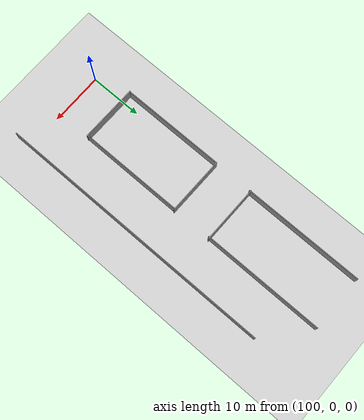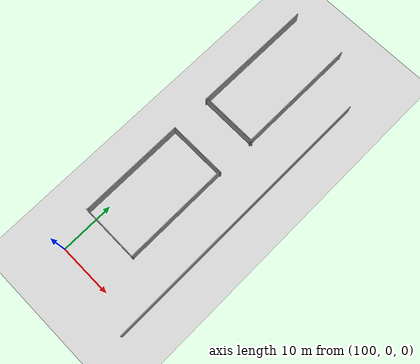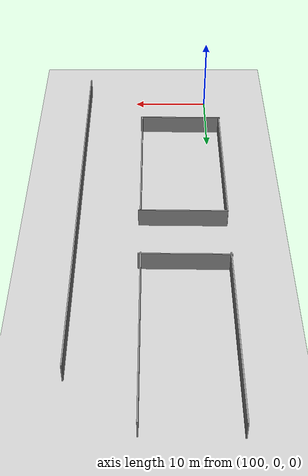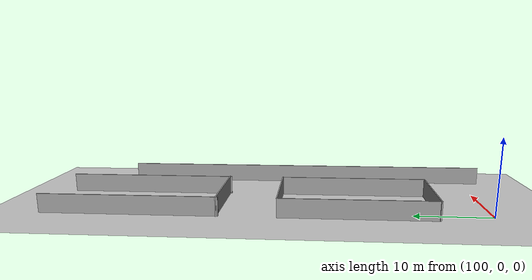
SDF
<sdf version="1.6">
 <world name="default">
  <model name="ground_plane">
   <static>1</static>
   <link name="link">
    <collision name="collision">
     <geometry><plane><normal>0 0 1</normal><size>100 100</size></plane></geometry>
     <surface>
      <contact><collide_bitmask>65535</collide_bitmask></contact>
      <friction><ode><mu>100</mu><mu2>50</mu2></ode></friction>
     </surface>
    </collision>
    <visual name="visual">
     <cast_shadows>0</cast_shadows>
     <geometry><plane><normal>0 0 1</normal><size>100 100</size></plane></geometry>
     <material>
      <script><uri>file://media/materials/scripts/gazebo.material</uri><name>Gazebo/Grey</name></script>
     </material>
    </visual>
   </link>
  </model>
  <model name="en_uzun_duvar2_clone_0">
   <link name="Wall_2">
    <pose>-3.83698 -0.045591 0 0 -0 0</pose>
    <inertial>
     <inertia><ixx>0</ixx><ixy>0</ixy><ixz>0</ixz><iyy>0</iyy><iyz>0</iyz><izz>0</izz></inertia>
     <mass>0</mass>
    </inertial>
    <visual name="Wall_2_Visual">
     <pose>0 0 1.25 0 -0 0</pose>
     <geometry><box><size>53.2897 0.15 2.5</size></box></geometry>
     <material>
      <script><uri>file://media/materials/scripts/gazebo.material</uri><name>Gazebo/Grey</name></script>
      <ambient>1 1 1 1</ambient>
     </material>
     <meta><layer>0</layer></meta>
    </visual>
    <collision name="Wall_2_Collision">
     <pose>0 0 1.25 0 -0 0</pose>
     <geometry><box><size>53.2897 0.15 2.5</size></box></geometry>
     <surface>
      <friction>
       <ode><mu>1</mu><mu2>1</mu2><fdir1>0 0 0</fdir1><slip1>0</slip1><slip2>0</slip2></ode>
       <torsional>
        <coefficient>1</coefficient>
        <patch_radius>0</patch_radius>
        <surface_radius>0</surface_radius>
        <use_patch_radius>1</use_patch_radius>
        <ode><slip>0</slip></ode>
       </torsional>
      </friction>
      <bounce><restitution_coefficient>0</restitution_coefficient><threshold>1e+06</threshold></bounce>
      <contact>
       <collide_without_contact>0</collide_without_contact>
       <collide_without_contact_bitmask>1</collide_without_contact_bitmask>
       <collide_bitmask>1</collide_bitmask>
       <ode>
        <soft_cfm>0</soft_cfm>
        <soft_erp>0.2</soft_erp>
        <kp>1e+13</kp>
        <kd>1</kd>
        <max_vel>0.01</max_vel>
        <min_depth>0</min_depth>
       </ode>
       <bullet>
        <split_impulse>1</split_impulse>
        <split_impulse_penetration_threshold>-0.01</split_impulse_penetration_threshold>
        <soft_cfm>0</soft_cfm>
        <soft_erp>0.2</soft_erp>
        <kp>1e+13</kp>
        <kd>1</kd>
       </bullet>
      </contact>
     </surface>
    </collision>
   </link>
   <static>1</static>
   <pose>116.718 27.7255 0 0 -0 1.57186</pose>
  </model>
  <model name="en_uzun_duvar2_clone_1_clone_clone_clone_3">
   <link name="Wall_2">
    <pose>10.2656 7.53235 0 0 -0 0</pose>
    <inertial>
     <inertia><ixx>0</ixx><ixy>0</ixy><ixz>0</ixz><iyy>0</iyy><iyz>0</iyz><izz>0</izz></inertia>
     <mass>0</mass>
    </inertial>
    <visual name="Wall_2_Visual">
     <pose>0 0 1.25 0 -0 0</pose>
     <geometry><box><size>19.779 0.15 2.5</size></box></geometry>
     <material>
      <script><uri>file://media/materials/scripts/gazebo.material</uri><name>Gazebo/Grey</name></script>
      <ambient>1 1 1 1</ambient>
     </material>
     <meta><layer>0</layer></meta>
    </visual>
    <collision name="Wall_2_Collision">
     <pose>0 0 1.25 0 -0 0</pose>
     <geometry><box><size>19.779 0.15 2.5</size></box></geometry>
     <surface>
      <friction>
       <ode><mu>1</mu><mu2>1</mu2><fdir1>0 0 0</fdir1><slip1>0</slip1><slip2>0</slip2></ode>
       <torsional>
        <coefficient>1</coefficient>
        <patch_radius>0</patch_radius>
        <surface_radius>0</surface_radius>
        <use_patch_radius>1</use_patch_radius>
        <ode><slip>0</slip></ode>
       </torsional>
      </friction>
      <bounce><restitution_coefficient>0</restitution_coefficient><threshold>1e+06</threshold></bounce>
      <contact>
       <collide_without_contact>0</collide_without_contact>
       <collide_without_contact_bitmask>1</collide_without_contact_bitmask>
       <collide_bitmask>1</collide_bitmask>
       <ode>
        <soft_cfm>0</soft_cfm>
        <soft_erp>0.2</soft_erp>
        <kp>1e+13</kp>
        <kd>1</kd>
        <max_vel>0.01</max_vel>
        <min_depth>0</min_depth>
       </ode>
       <bullet>
        <split_impulse>1</split_impulse>
        <split_impulse_penetration_threshold>-0.01</split_impulse_penetration_threshold>
        <soft_cfm>0</soft_cfm>
        <soft_erp>0.2</soft_erp>
        <kp>1e+13</kp>
        <kd>1</kd>
       </bullet>
      </contact>
     </surface>
    </collision>
   </link>
   <static>1</static>
   <pose>116.58 6.45625 0 0 -0 1.57059</pose>
  </model>
  <model name="en_uzun_duvar2_clone_1_clone_clone_clone_clone_1">
   <link name="Wall_2">
    <pose>9.82359 7.53236 0 0 -0 0</pose>
    <inertial>
     <inertia><ixx>0</ixx><ixy>0</ixy><ixz>0</ixz><iyy>0</iyy><iyz>0</iyz><izz>0</izz></inertia>
     <mass>0</mass>
    </inertial>
    <visual name="Wall_2_Visual">
     <pose>0 0 1.25 0 -0 0</pose>
     <geometry><box><size>11.0273 0.15 2.5</size></box></geometry>
     <material>
      <script><uri>file://media/materials/scripts/gazebo.material</uri><name>Gazebo/Grey</name></script>
      <ambient>1 1 1 1</ambient>
     </material>
     <meta><layer>0</layer></meta>
    </visual>
    <collision name="Wall_2_Collision">
     <pose>0 0 1.25 0 -0 0</pose>
     <geometry><box><size>11.0273 0.15 2.5</size></box></geometry>
     <surface>
      <friction>
       <ode><mu>1</mu><mu2>1</mu2><fdir1>0 0 0</fdir1><slip1>0</slip1><slip2>0</slip2></ode>
       <torsional>
        <coefficient>1</coefficient>
        <patch_radius>0</patch_radius>
        <surface_radius>0</surface_radius>
        <use_patch_radius>1</use_patch_radius>
        <ode><slip>0</slip></ode>
       </torsional>
      </friction>
      <bounce><restitution_coefficient>0</restitution_coefficient><threshold>1e+06</threshold></bounce>
      <contact>
       <collide_without_contact>0</collide_without_contact>
       <collide_without_contact_bitmask>1</collide_without_contact_bitmask>
       <collide_bitmask>1</collide_bitmask>
       <ode>
        <soft_cfm>0</soft_cfm>
        <soft_erp>0.2</soft_erp>
        <kp>1e+13</kp>
        <kd>1</kd>
        <max_vel>0.01</max_vel>
        <min_depth>0</min_depth>
       </ode>
       <bullet>
        <split_impulse>1</split_impulse>
        <split_impulse_penetration_threshold>-0.01</split_impulse_penetration_threshold>
        <soft_cfm>0</soft_cfm>
        <soft_erp>0.2</soft_erp>
        <kp>1e+13</kp>
        <kd>1</kd>
       </bullet>
      </contact>
     </surface>
    </collision>
   </link>
   <static>1</static>
   <pose>113.712 34.1944 0 0 -0 3.13031</pose>
  </model>
  <model name="en_uzun_duvar2_clone_1_clone_clone_clone_clone_2">
   <link name="Wall_2">
    <pose>9.82359 7.53236 0 0 -0 0</pose>
    <inertial>
     <inertia><ixx>0</ixx><ixy>0</ixy><ixz>0</ixz><iyy>0</iyy><iyz>0</iyz><izz>0</izz></inertia>
     <mass>0</mass>
    </inertial>
    <visual name="Wall_2_Visual">
     <pose>0 0 1.25 0 -0 0</pose>
     <geometry><box><size>11.0273 0.15 2.5</size></box></geometry>
     <material>
      <script><uri>file://media/materials/scripts/gazebo.material</uri><name>Gazebo/Grey</name></script>
      <ambient>1 1 1 1</ambient>
     </material>
     <meta><layer>0</layer></meta>
    </visual>
    <collision name="Wall_2_Collision">
     <pose>0 0 1.25 0 -0 0</pose>
     <geometry><box><size>11.0273 0.15 2.5</size></box></geometry>
     <surface>
      <friction>
       <ode><mu>1</mu><mu2>1</mu2><fdir1>0 0 0</fdir1><slip1>0</slip1><slip2>0</slip2></ode>
       <torsional>
        <coefficient>1</coefficient>
        <patch_radius>0</patch_radius>
        <surface_radius>0</surface_radius>
        <use_patch_radius>1</use_patch_radius>
        <ode><slip>0</slip></ode>
       </torsional>
      </friction>
      <bounce><restitution_coefficient>0</restitution_coefficient><threshold>1e+06</threshold></bounce>
      <contact>
       <collide_without_contact>0</collide_without_contact>
       <collide_without_contact_bitmask>1</collide_without_contact_bitmask>
       <collide_bitmask>1</collide_bitmask>
       <ode>
        <soft_cfm>0</soft_cfm>
        <soft_erp>0.2</soft_erp>
        <kp>1e+13</kp>
        <kd>1</kd>
        <max_vel>0.01</max_vel>
        <min_depth>0</min_depth>
       </ode>
       <bullet>
        <split_impulse>1</split_impulse>
        <split_impulse_penetration_threshold>-0.01</split_impulse_penetration_threshold>
        <soft_cfm>0</soft_cfm>
        <soft_erp>0.2</soft_erp>
        <kp>1e+13</kp>
        <kd>1</kd>
       </bullet>
      </contact>
     </surface>
    </collision>
   </link>
   <static>1</static>
   <pose>113.659 41.7843 0 0 -0 3.13031</pose>
  </model>
  <model name="en_uzun_duvar2_clone_1_clone_clone_clone_clone_3">
   <link name="Wall_2">
    <pose>9.82359 7.53236 0 0 -0 0</pose>
    <inertial>
     <inertia><ixx>0</ixx><ixy>0</ixy><ixz>0</ixz><iyy>0</iyy><iyz>0</iyz><izz>0</izz></inertia>
     <mass>0</mass>
    </inertial>
    <visual name="Wall_2_Visual">
     <pose>0 0 1.25 0 -0 0</pose>
     <geometry><box><size>11.0273 0.15 2.5</size></box></geometry>
     <material>
      <script><uri>file://media/materials/scripts/gazebo.material</uri><name>Gazebo/Grey</name></script>
      <ambient>1 1 1 1</ambient>
     </material>
     <meta><layer>0</layer></meta>
    </visual>
    <collision name="Wall_2_Collision">
     <pose>0 0 1.25 0 -0 0</pose>
     <geometry><box><size>11.0273 0.15 2.5</size></box></geometry>
     <surface>
      <friction>
       <ode><mu>1</mu><mu2>1</mu2><fdir1>0 0 0</fdir1><slip1>0</slip1><slip2>0</slip2></ode>
       <torsional>
        <coefficient>1</coefficient>
        <patch_radius>0</patch_radius>
        <surface_radius>0</surface_radius>
        <use_patch_radius>1</use_patch_radius>
        <ode><slip>0</slip></ode>
       </torsional>
      </friction>
      <bounce><restitution_coefficient>0</restitution_coefficient><threshold>1e+06</threshold></bounce>
      <contact>
       <collide_without_contact>0</collide_without_contact>
       <collide_without_contact_bitmask>1</collide_without_contact_bitmask>
       <collide_bitmask>1</collide_bitmask>
       <ode>
        <soft_cfm>0</soft_cfm>
        <soft_erp>0.2</soft_erp>
        <kp>1e+13</kp>
        <kd>1</kd>
        <max_vel>0.01</max_vel>
        <min_depth>0</min_depth>
       </ode>
       <bullet>
        <split_impulse>1</split_impulse>
        <split_impulse_penetration_threshold>-0.01</split_impulse_penetration_threshold>
        <soft_cfm>0</soft_cfm>
        <soft_erp>0.2</soft_erp>
        <kp>1e+13</kp>
        <kd>1</kd>
       </bullet>
      </contact>
     </surface>
    </collision>
   </link>
   <static>1</static>
   <pose>113.605 14.3356 0 0 -0 3.13031</pose>
  </model>
  <model name="en_uzun_duvar2_clone_1_clone_clone_clone_10_clone">
   <link name="Wall_2">
    <pose>10.2656 7.53235 0 0 -0 0</pose>
    <inertial>
     <inertia><ixx>0</ixx><ixy>0</ixy><ixz>0</ixz><iyy>0</iyy><iyz>0</iyz><izz>0</izz></inertia>
     <mass>0</mass>
    </inertial>
    <visual name="Wall_2_Visual">
     <pose>0 0 1.25 0 -0 0</pose>
     <geometry><box><size>23.1013 0.15 2.5</size></box></geometry>
     <material>
      <script><uri>file://media/materials/scripts/gazebo.material</uri><name>Gazebo/Grey</name></script>
      <ambient>1 1 1 1</ambient>
     </material>
     <meta><layer>0</layer></meta>
    </visual>
    <collision name="Wall_2_Collision">
     <pose>0 0 1.25 0 -0 0</pose>
     <geometry><box><size>23.1013 0.15 2.5</size></box></geometry>
     <surface>
      <friction>
       <ode><mu>1</mu><mu2>1</mu2><fdir1>0 0 0</fdir1><slip1>0</slip1><slip2>0</slip2></ode>
       <torsional>
        <coefficient>1</coefficient>
        <patch_radius>0</patch_radius>
        <surface_radius>0</surface_radius>
        <use_patch_radius>1</use_patch_radius>
        <ode><slip>0</slip></ode>
       </torsional>
      </friction>
      <bounce><restitution_coefficient>0</restitution_coefficient><threshold>1e+06</threshold></bounce>
      <contact>
       <collide_without_contact>0</collide_without_contact>
       <collide_without_contact_bitmask>1</collide_without_contact_bitmask>
       <collide_bitmask>1</collide_bitmask>
       <ode>
        <soft_cfm>0</soft_cfm>
        <soft_erp>0.2</soft_erp>
        <kp>1e+13</kp>
        <kd>1</kd>
        <max_vel>0.01</max_vel>
        <min_depth>0</min_depth>
       </ode>
       <bullet>
        <split_impulse>1</split_impulse>
        <split_impulse_penetration_threshold>-0.01</split_impulse_penetration_threshold>
        <soft_cfm>0</soft_cfm>
        <soft_erp>0.2</soft_erp>
        <kp>1e+13</kp>
        <kd>1</kd>
       </bullet>
      </contact>
     </surface>
    </collision>
   </link>
   <static>1</static>
   <pose>116.467 35.3175 0 0 -0 1.57059</pose>
  </model>
  <model name="en_uzun_duvar2_clone_1_clone_clone_clone_10_clone_0">
   <link name="Wall_2">
    <pose>10.2656 7.53235 0 0 -0 0</pose>
    <inertial>
     <inertia><ixx>0</ixx><ixy>0</ixy><ixz>0</ixz><iyy>0</iyy><iyz>0</iyz><izz>0</izz></inertia>
     <mass>0</mass>
    </inertial>
    <visual name="Wall_2_Visual">
     <pose>0 0 1.25 0 -0 0</pose>
     <geometry><box><size>23.1013 0.15 2.5</size></box></geometry>
     <material>
      <script><uri>file://media/materials/scripts/gazebo.material</uri><name>Gazebo/Grey</name></script>
      <ambient>1 1 1 1</ambient>
     </material>
     <meta><layer>0</layer></meta>
    </visual>
    <collision name="Wall_2_Collision">
     <pose>0 0 1.25 0 -0 0</pose>
     <geometry><box><size>23.1013 0.15 2.5</size></box></geometry>
     <surface>
      <friction>
       <ode><mu>1</mu><mu2>1</mu2><fdir1>0 0 0</fdir1><slip1>0</slip1><slip2>0</slip2></ode>
       <torsional>
        <coefficient>1</coefficient>
        <patch_radius>0</patch_radius>
        <surface_radius>0</surface_radius>
        <use_patch_radius>1</use_patch_radius>
        <ode><slip>0</slip></ode>
       </torsional>
      </friction>
      <bounce><restitution_coefficient>0</restitution_coefficient><threshold>1e+06</threshold></bounce>
      <contact>
       <collide_without_contact>0</collide_without_contact>
       <collide_without_contact_bitmask>1</collide_without_contact_bitmask>
       <collide_bitmask>1</collide_bitmask>
       <ode>
        <soft_cfm>0</soft_cfm>
        <soft_erp>0.2</soft_erp>
        <kp>1e+13</kp>
        <kd>1</kd>
        <max_vel>0.01</max_vel>
        <min_depth>0</min_depth>
       </ode>
       <bullet>
        <split_impulse>1</split_impulse>
        <split_impulse_penetration_threshold>-0.01</split_impulse_penetration_threshold>
        <soft_cfm>0</soft_cfm>
        <soft_erp>0.2</soft_erp>
        <kp>1e+13</kp>
        <kd>1</kd>
       </bullet>
      </contact>
     </surface>
    </collision>
   </link>
   <static>1</static>
   <pose>105.933 35.4263 0 0 -0 1.57059</pose>
  </model>
  <model name="en_uzun_duvar2_clone_1_clone_clone_clone_3_clone">
   <link name="Wall_2">
    <pose>10.2656 7.53235 0 0 -0 0</pose>
    <inertial>
     <inertia><ixx>0</ixx><ixy>0</ixy><ixz>0</ixz><iyy>0</iyy><iyz>0</iyz><izz>0</izz></inertia>
     <mass>0</mass>
    </inertial>
    <visual name="Wall_2_Visual">
     <pose>0 0 1.25 0 -0 0</pose>
     <geometry><box><size>19.779 0.15 2.5</size></box></geometry>
     <material>
      <script><uri>file://media/materials/scripts/gazebo.material</uri><name>Gazebo/Grey</name></script>
      <ambient>1 1 1 1</ambient>
     </material>
     <meta><layer>0</layer></meta>
    </visual>
    <collision name="Wall_2_Collision">
     <pose>0 0 1.25 0 -0 0</pose>
     <geometry><box><size>19.779 0.15 2.5</size></box></geometry>
     <surface>
      <friction>
       <ode><mu>1</mu><mu2>1</mu2><fdir1>0 0 0</fdir1><slip1>0</slip1><slip2>0</slip2></ode>
       <torsional>
        <coefficient>1</coefficient>
        <patch_radius>0</patch_radius>
        <surface_radius>0</surface_radius>
        <use_patch_radius>1</use_patch_radius>
        <ode><slip>0</slip></ode>
       </torsional>
      </friction>
      <bounce><restitution_coefficient>0</restitution_coefficient><threshold>1e+06</threshold></bounce>
      <contact>
       <collide_without_contact>0</collide_without_contact>
       <collide_without_contact_bitmask>1</collide_without_contact_bitmask>
       <collide_bitmask>1</collide_bitmask>
       <ode>
        <soft_cfm>0</soft_cfm>
        <soft_erp>0.2</soft_erp>
        <kp>1e+13</kp>
        <kd>1</kd>
        <max_vel>0.01</max_vel>
        <min_depth>0</min_depth>
       </ode>
       <bullet>
        <split_impulse>1</split_impulse>
        <split_impulse_penetration_threshold>-0.01</split_impulse_penetration_threshold>
        <soft_cfm>0</soft_cfm>
        <soft_erp>0.2</soft_erp>
        <kp>1e+13</kp>
        <kd>1</kd>
       </bullet>
      </contact>
     </surface>
    </collision>
   </link>
   <static>1</static>
   <pose>105.864 6.72183 0 0 -0 1.57059</pose>
  </model>
 </world>
</sdf>
